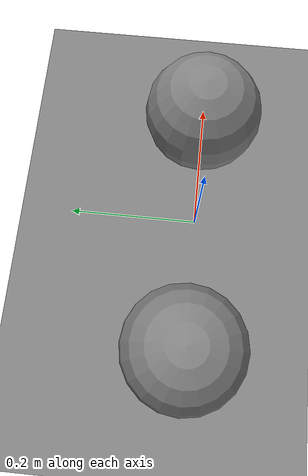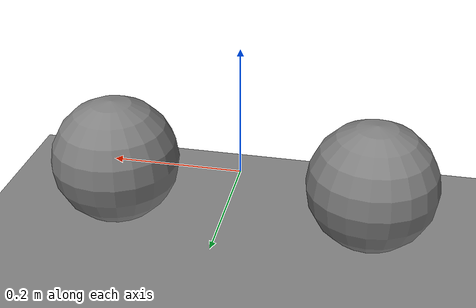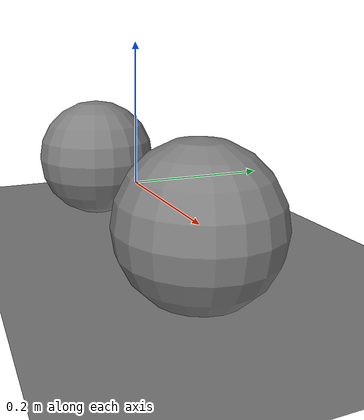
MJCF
<mujoco><option timestep=".0005" integrator="Euler" gravity="0 0 -9.81" solver="Newton" cone="pyramidal" jacobian="auto"><flag constraint="enable" warmstart="disable" island="disable" /></option><worldbody><body name="carrier_0"><freejoint /><inertial pos="0 0 0" mass=".05" diaginertia=".0002 .0002 .0002" /><body name="a" pos="-.2 0 0"><joint name="j" limited="true" frictionloss=".002" range="-1 1" /><geom size=".1" mass="1" /></body></body><body name="carrier_1"><freejoint /><inertial pos="0 0 0" mass=".05" diaginertia=".0002 .0002 .0002" /><body name="b" pos=".2 0 0"><joint name="j2" limited="true" frictionloss=".002" range="-1 1" /><geom size=".1" mass="1" /></body></body><geom name="controller_floor" type="plane" size="3 3 .1" pos="0 0 -.095" friction=".6 .01 .001" condim="3" /></worldbody><actuator><dcmotor joint="j" motorconst=".2" resistance="2" input="voltage" inductance="0 .02" /></actuator><tendon><fixed name="t" stiffness=".3" damping=".04" springlength=".01" frictionloss=".001" limited="true" range="-.04 .04"><joint joint="j" coef="1" /><joint joint="j2" coef="-.5" /></fixed></tendon><equality><joint joint1="j" joint2="j2" polycoef="0 1 0 0 0" /></equality></mujoco>
